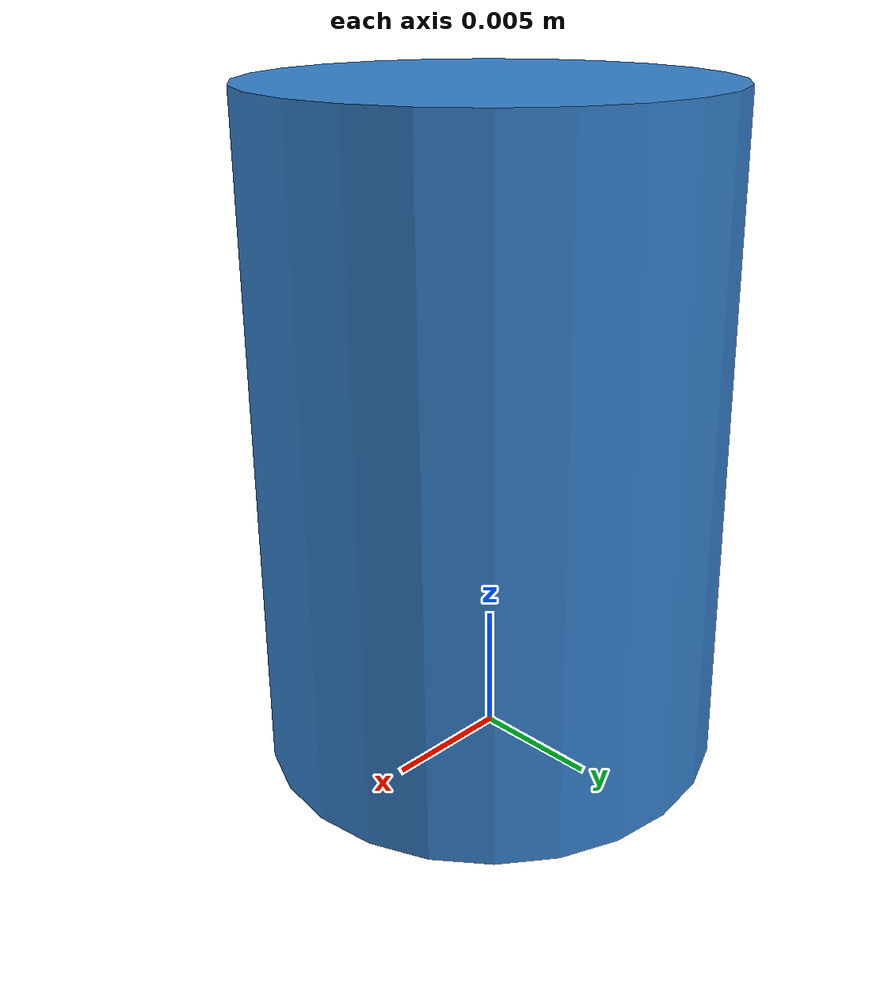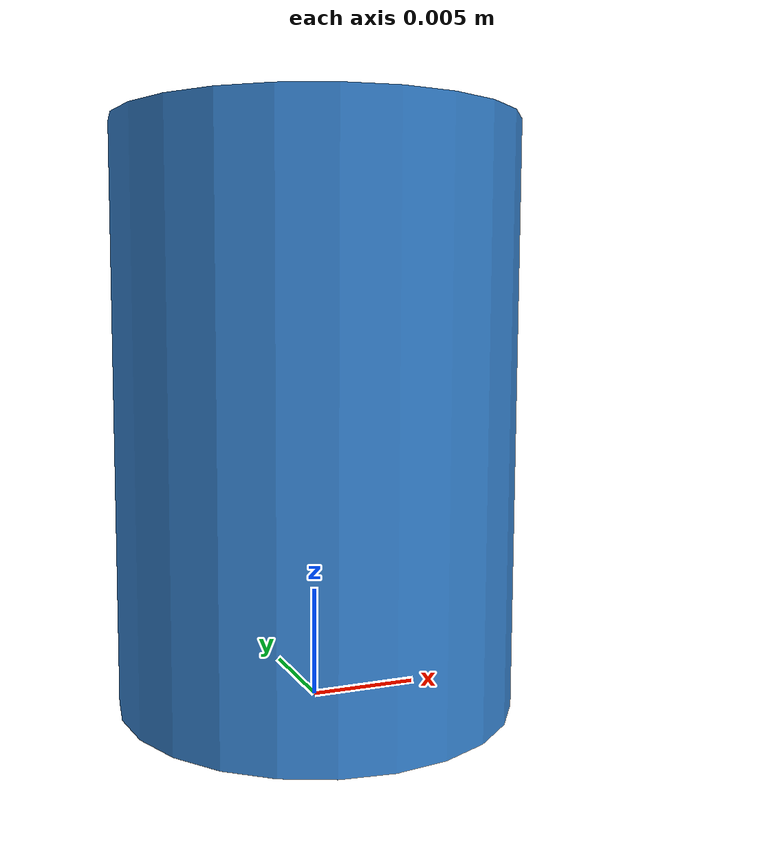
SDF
<?xml version="1.0"?>
<sdf version="1.6">
  <model name="leptrino_cfs018ca101u">
    <pose>0 0 0 0 0 0</pose>

    <link name="mount">
      <pose>0 0 0 0 0 0</pose>
      <gravity>false</gravity>
      <inertial>
        <mass>1000.0</mass>
        <inertia>
          <ixx>1.0</ixx><iyy>1.0</iyy><izz>1.0</izz>
          <ixy>0.0</ixy><ixz>0.0</ixz><iyz>0.0</iyz>
        </inertia>
      </inertial>
    </link>

    <link name="body">
      <!-- Centre at z=0.013 → bottom z=0, top z=0.026 -->
      <pose>0 0 0.013 0 0 0</pose>
      <inertial>
        <mass>0.02</mass>
        <inertia>
          <ixx>1e-6</ixx><iyy>1e-6</iyy><izz>1e-6</izz>
          <ixy>0.0</ixy><ixz>0.0</ixz><iyz>0.0</iyz>
        </inertia>
      </inertial>

      <collision name="tactile_collision">
        <geometry>
          <cylinder>
            <radius>0.009</radius>
            <length>0.026</length>
          </cylinder>
        </geometry>
        <surface>
          <contact>
            <ode>
              <kp>50000.0</kp>
              <kd>100.0</kd>
              <max_vel>0.01</max_vel>
              <min_depth>0.0001</min_depth>
            </ode>
          </contact>
          <friction>
            <ode><mu>0.5</mu><mu2>0.5</mu2></ode>
          </friction>
        </surface>
      </collision>

      <sensor_size>0.018 0.018 0.026</sensor_size>
      <shape>cylinder</shape>

      <visual name="visual">
        <geometry>
          <cylinder>
            <radius>0.009</radius>
            <length>0.026</length>
          </cylinder>
        </geometry>
        <material>
          <ambient>0.2 0.5 0.8 1</ambient>
          <diffuse>0.2 0.5 0.8 1</diffuse>
        </material>
      </visual>

      <sensor name="tactile_bumper" type="contact">
        <always_on>true</always_on>
        <update_rate>50.0</update_rate>
        <contact><collision>tactile_collision</collision></contact>
        <plugin name="tactile_bumper_plugin" filename="libgazebo_ros_bumper.so">
          <robotNamespace>/leptrino_cfs018ca101u</robotNamespace>
          <topicName>bumper_states</topicName>
          <frameName>body</frameName>
        </plugin>
      </sensor>
    </link>

    <joint name="world_fixed" type="fixed">
      <parent>world</parent>
      <child>mount</child>
    </joint>

    <joint name="ft_joint" type="fixed">
      <parent>mount</parent>
      <child>body</child>
    </joint>

  </model>
</sdf>
